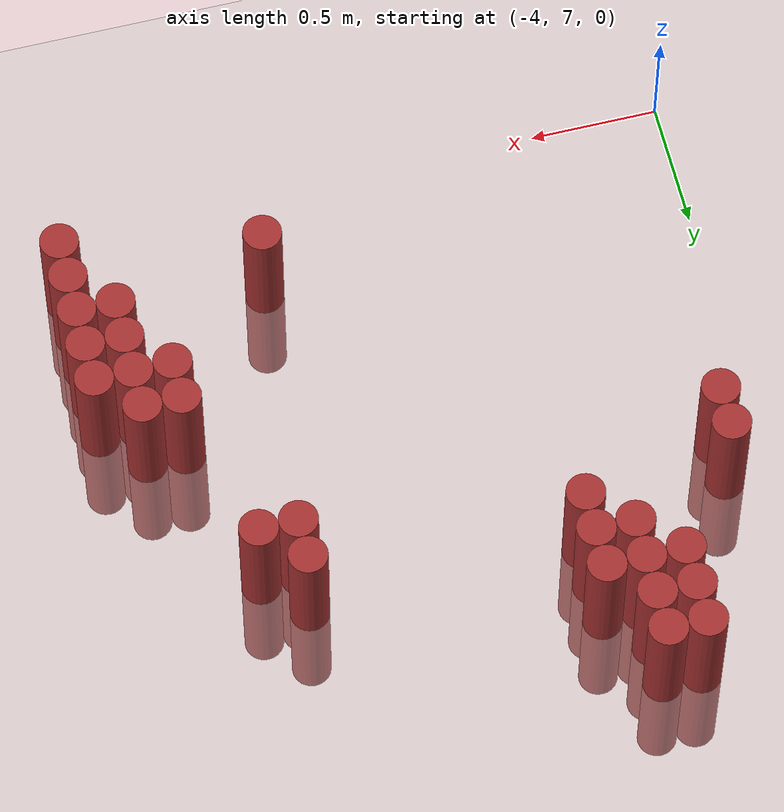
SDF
<sdf version="1.6">
 <world name="default">
  <model name="ground_plane">
   <static>1</static>
   <link name="link">
    <collision name="collision">
     <geometry><plane><normal>0 0 1</normal><size>100 100</size></plane></geometry>
     <surface><friction><ode><mu>100</mu><mu2>50</mu2></ode></friction></surface>
    </collision>
    <visual name="visual">
     <cast_shadows>0</cast_shadows>
     <geometry><plane><normal>0 0 1</normal><size>100 100</size></plane></geometry>
     <material>
      <script><uri>file://media/materials/scripts/gazebo.material</uri><name>Gazebo/Grey</name></script>
     </material>
    </visual>
   </link>
  </model>
  <model name="unit_cylinder_156">
   <static>1</static>
   <pose>-3.825000 8.475000 0.000000 0.000000 0.000000 0.000000</pose>
   <link name="link">
    <inertial>
     <mass>1</mass>
     <inertia><ixx>0.145833</ixx><ixy>0</ixy><ixz>0</ixz><iyy>0.145833</iyy><iyz>0</iyz><izz>0.125</izz></inertia>
    </inertial>
    <collision name="collision">
     <geometry><cylinder><radius>0.075000</radius><length>1</length></cylinder></geometry>
    </collision>
    <visual name="visual">
     <geometry><cylinder><radius>0.075000</radius><length>1</length></cylinder></geometry>
     <material>
      <ambient>0.648000 0.192000 0.192000 1</ambient>
      <diffuse>0.648000 0.192000 0.192000 1</diffuse>
     </material>
     <material>
      <script><name>Gazebo/Grey</name><uri>file://media/materials/scripts/gazebo.material</uri></script>
     </material>
    </visual>
   </link>
  </model>
  <model name="unit_cylinder_157">
   <static>1</static>
   <pose>-3.825000 8.625000 0.000000 0.000000 0.000000 0.000000</pose>
   <link name="link">
    <inertial>
     <mass>1</mass>
     <inertia><ixx>0.145833</ixx><ixy>0</ixy><ixz>0</ixz><iyy>0.145833</iyy><iyz>0</iyz><izz>0.125</izz></inertia>
    </inertial>
    <collision name="collision">
     <geometry><cylinder><radius>0.075000</radius><length>1</length></cylinder></geometry>
    </collision>
    <visual name="visual">
     <geometry><cylinder><radius>0.075000</radius><length>1</length></cylinder></geometry>
     <material>
      <ambient>0.648000 0.192000 0.192000 1</ambient>
      <diffuse>0.648000 0.192000 0.192000 1</diffuse>
     </material>
     <material>
      <script><name>Gazebo/Grey</name><uri>file://media/materials/scripts/gazebo.material</uri></script>
     </material>
    </visual>
   </link>
  </model>
  <model name="unit_cylinder_166">
   <static>1</static>
   <pose>-3.525000 9.075000 0.000000 0.000000 0.000000 0.000000</pose>
   <link name="link">
    <inertial>
     <mass>1</mass>
     <inertia><ixx>0.145833</ixx><ixy>0</ixy><ixz>0</ixz><iyy>0.145833</iyy><iyz>0</iyz><izz>0.125</izz></inertia>
    </inertial>
    <collision name="collision">
     <geometry><cylinder><radius>0.075000</radius><length>1</length></cylinder></geometry>
    </collision>
    <visual name="visual">
     <geometry><cylinder><radius>0.075000</radius><length>1</length></cylinder></geometry>
     <material>
      <ambient>0.648000 0.192000 0.192000 1</ambient>
      <diffuse>0.648000 0.192000 0.192000 1</diffuse>
     </material>
     <material>
      <script><name>Gazebo/Grey</name><uri>file://media/materials/scripts/gazebo.material</uri></script>
     </material>
    </visual>
   </link>
  </model>
  <model name="unit_cylinder_167">
   <static>1</static>
   <pose>-3.525000 9.225000 0.000000 0.000000 0.000000 0.000000</pose>
   <link name="link">
    <inertial>
     <mass>1</mass>
     <inertia><ixx>0.145833</ixx><ixy>0</ixy><ixz>0</ixz><iyy>0.145833</iyy><iyz>0</iyz><izz>0.125</izz></inertia>
    </inertial>
    <collision name="collision">
     <geometry><cylinder><radius>0.075000</radius><length>1</length></cylinder></geometry>
    </collision>
    <visual name="visual">
     <geometry><cylinder><radius>0.075000</radius><length>1</length></cylinder></geometry>
     <material>
      <ambient>0.648000 0.192000 0.192000 1</ambient>
      <diffuse>0.648000 0.192000 0.192000 1</diffuse>
     </material>
     <material>
      <script><name>Gazebo/Grey</name><uri>file://media/materials/scripts/gazebo.material</uri></script>
     </material>
    </visual>
   </link>
  </model>
  <model name="unit_cylinder_168">
   <static>1</static>
   <pose>-3.525000 9.375000 0.000000 0.000000 0.000000 0.000000</pose>
   <link name="link">
    <inertial>
     <mass>1</mass>
     <inertia><ixx>0.145833</ixx><ixy>0</ixy><ixz>0</ixz><iyy>0.145833</iyy><iyz>0</iyz><izz>0.125</izz></inertia>
    </inertial>
    <collision name="collision">
     <geometry><cylinder><radius>0.075000</radius><length>1</length></cylinder></geometry>
    </collision>
    <visual name="visual">
     <geometry><cylinder><radius>0.075000</radius><length>1</length></cylinder></geometry>
     <material>
      <ambient>0.648000 0.192000 0.192000 1</ambient>
      <diffuse>0.648000 0.192000 0.192000 1</diffuse>
     </material>
     <material>
      <script><name>Gazebo/Grey</name><uri>file://media/materials/scripts/gazebo.material</uri></script>
     </material>
    </visual>
   </link>
  </model>
  <model name="unit_cylinder_173">
   <static>1</static>
   <pose>-3.375000 8.925000 0.000000 0.000000 0.000000 0.000000</pose>
   <link name="link">
    <inertial>
     <mass>1</mass>
     <inertia><ixx>0.145833</ixx><ixy>0</ixy><ixz>0</ixz><iyy>0.145833</iyy><iyz>0</iyz><izz>0.125</izz></inertia>
    </inertial>
    <collision name="collision">
     <geometry><cylinder><radius>0.075000</radius><length>1</length></cylinder></geometry>
    </collision>
    <visual name="visual">
     <geometry><cylinder><radius>0.075000</radius><length>1</length></cylinder></geometry>
     <material>
      <ambient>0.648000 0.192000 0.192000 1</ambient>
      <diffuse>0.648000 0.192000 0.192000 1</diffuse>
     </material>
     <material>
      <script><name>Gazebo/Grey</name><uri>file://media/materials/scripts/gazebo.material</uri></script>
     </material>
    </visual>
   </link>
  </model>
  <model name="unit_cylinder_174">
   <static>1</static>
   <pose>-3.375000 9.075000 0.000000 0.000000 0.000000 0.000000</pose>
   <link name="link">
    <inertial>
     <mass>1</mass>
     <inertia><ixx>0.145833</ixx><ixy>0</ixy><ixz>0</ixz><iyy>0.145833</iyy><iyz>0</iyz><izz>0.125</izz></inertia>
    </inertial>
    <collision name="collision">
     <geometry><cylinder><radius>0.075000</radius><length>1</length></cylinder></geometry>
    </collision>
    <visual name="visual">
     <geometry><cylinder><radius>0.075000</radius><length>1</length></cylinder></geometry>
     <material>
      <ambient>0.648000 0.192000 0.192000 1</ambient>
      <diffuse>0.648000 0.192000 0.192000 1</diffuse>
     </material>
     <material>
      <script><name>Gazebo/Grey</name><uri>file://media/materials/scripts/gazebo.material</uri></script>
     </material>
    </visual>
   </link>
  </model>
  <model name="unit_cylinder_175">
   <static>1</static>
   <pose>-3.375000 9.225000 0.000000 0.000000 0.000000 0.000000</pose>
   <link name="link">
    <inertial>
     <mass>1</mass>
     <inertia><ixx>0.145833</ixx><ixy>0</ixy><ixz>0</ixz><iyy>0.145833</iyy><iyz>0</iyz><izz>0.125</izz></inertia>
    </inertial>
    <collision name="collision">
     <geometry><cylinder><radius>0.075000</radius><length>1</length></cylinder></geometry>
    </collision>
    <visual name="visual">
     <geometry><cylinder><radius>0.075000</radius><length>1</length></cylinder></geometry>
     <material>
      <ambient>0.648000 0.192000 0.192000 1</ambient>
      <diffuse>0.648000 0.192000 0.192000 1</diffuse>
     </material>
     <material>
      <script><name>Gazebo/Grey</name><uri>file://media/materials/scripts/gazebo.material</uri></script>
     </material>
    </visual>
   </link>
  </model>
  <model name="unit_cylinder_176">
   <static>1</static>
   <pose>-3.375000 9.375000 0.000000 0.000000 0.000000 0.000000</pose>
   <link name="link">
    <inertial>
     <mass>1</mass>
     <inertia><ixx>0.145833</ixx><ixy>0</ixy><ixz>0</ixz><iyy>0.145833</iyy><iyz>0</iyz><izz>0.125</izz></inertia>
    </inertial>
    <collision name="collision">
     <geometry><cylinder><radius>0.075000</radius><length>1</length></cylinder></geometry>
    </collision>
    <visual name="visual">
     <geometry><cylinder><radius>0.075000</radius><length>1</length></cylinder></geometry>
     <material>
      <ambient>0.648000 0.192000 0.192000 1</ambient>
      <diffuse>0.648000 0.192000 0.192000 1</diffuse>
     </material>
     <material>
      <script><name>Gazebo/Grey</name><uri>file://media/materials/scripts/gazebo.material</uri></script>
     </material>
    </visual>
   </link>
  </model>
  <model name="unit_cylinder_179">
   <static>1</static>
   <pose>-3.225000 8.775000 0.000000 0.000000 0.000000 0.000000</pose>
   <link name="link">
    <inertial>
     <mass>1</mass>
     <inertia><ixx>0.145833</ixx><ixy>0</ixy><ixz>0</ixz><iyy>0.145833</iyy><iyz>0</iyz><izz>0.125</izz></inertia>
    </inertial>
    <collision name="collision">
     <geometry><cylinder><radius>0.075000</radius><length>1</length></cylinder></geometry>
    </collision>
    <visual name="visual">
     <geometry><cylinder><radius>0.075000</radius><length>1</length></cylinder></geometry>
     <material>
      <ambient>0.648000 0.192000 0.192000 1</ambient>
      <diffuse>0.648000 0.192000 0.192000 1</diffuse>
     </material>
     <material>
      <script><name>Gazebo/Grey</name><uri>file://media/materials/scripts/gazebo.material</uri></script>
     </material>
    </visual>
   </link>
  </model>
  <model name="unit_cylinder_180">
   <static>1</static>
   <pose>-3.225000 8.925000 0.000000 0.000000 0.000000 0.000000</pose>
   <link name="link">
    <inertial>
     <mass>1</mass>
     <inertia><ixx>0.145833</ixx><ixy>0</ixy><ixz>0</ixz><iyy>0.145833</iyy><iyz>0</iyz><izz>0.125</izz></inertia>
    </inertial>
    <collision name="collision">
     <geometry><cylinder><radius>0.075000</radius><length>1</length></cylinder></geometry>
    </collision>
    <visual name="visual">
     <geometry><cylinder><radius>0.075000</radius><length>1</length></cylinder></geometry>
     <material>
      <ambient>0.648000 0.192000 0.192000 1</ambient>
      <diffuse>0.648000 0.192000 0.192000 1</diffuse>
     </material>
     <material>
      <script><name>Gazebo/Grey</name><uri>file://media/materials/scripts/gazebo.material</uri></script>
     </material>
    </visual>
   </link>
  </model>
  <model name="unit_cylinder_181">
   <static>1</static>
   <pose>-3.225000 9.075000 0.000000 0.000000 0.000000 0.000000</pose>
   <link name="link">
    <inertial>
     <mass>1</mass>
     <inertia><ixx>0.145833</ixx><ixy>0</ixy><ixz>0</ixz><iyy>0.145833</iyy><iyz>0</iyz><izz>0.125</izz></inertia>
    </inertial>
    <collision name="collision">
     <geometry><cylinder><radius>0.075000</radius><length>1</length></cylinder></geometry>
    </collision>
    <visual name="visual">
     <geometry><cylinder><radius>0.075000</radius><length>1</length></cylinder></geometry>
     <material>
      <ambient>0.648000 0.192000 0.192000 1</ambient>
      <diffuse>0.648000 0.192000 0.192000 1</diffuse>
     </material>
     <material>
      <script><name>Gazebo/Grey</name><uri>file://media/materials/scripts/gazebo.material</uri></script>
     </material>
    </visual>
   </link>
  </model>
  <model name="unit_cylinder_189">
   <static>1</static>
   <pose>-2.325000 7.425000 0.000000 0.000000 0.000000 0.000000</pose>
   <link name="link">
    <inertial>
     <mass>1</mass>
     <inertia><ixx>0.145833</ixx><ixy>0</ixy><ixz>0</ixz><iyy>0.145833</iyy><iyz>0</iyz><izz>0.125</izz></inertia>
    </inertial>
    <collision name="collision">
     <geometry><cylinder><radius>0.075000</radius><length>1</length></cylinder></geometry>
    </collision>
    <visual name="visual">
     <geometry><cylinder><radius>0.075000</radius><length>1</length></cylinder></geometry>
     <material>
      <ambient>0.648000 0.192000 0.192000 1</ambient>
      <diffuse>0.648000 0.192000 0.192000 1</diffuse>
     </material>
     <material>
      <script><name>Gazebo/Grey</name><uri>file://media/materials/scripts/gazebo.material</uri></script>
     </material>
    </visual>
   </link>
  </model>
  <model name="unit_cylinder_192">
   <static>1</static>
   <pose>-2.175000 8.625000 0.000000 0.000000 0.000000 0.000000</pose>
   <link name="link">
    <inertial>
     <mass>1</mass>
     <inertia><ixx>0.145833</ixx><ixy>0</ixy><ixz>0</ixz><iyy>0.145833</iyy><iyz>0</iyz><izz>0.125</izz></inertia>
    </inertial>
    <collision name="collision">
     <geometry><cylinder><radius>0.075000</radius><length>1</length></cylinder></geometry>
    </collision>
    <visual name="visual">
     <geometry><cylinder><radius>0.075000</radius><length>1</length></cylinder></geometry>
     <material>
      <ambient>0.648000 0.192000 0.192000 1</ambient>
      <diffuse>0.648000 0.192000 0.192000 1</diffuse>
     </material>
     <material>
      <script><name>Gazebo/Grey</name><uri>file://media/materials/scripts/gazebo.material</uri></script>
     </material>
    </visual>
   </link>
  </model>
  <model name="unit_cylinder_193">
   <static>1</static>
   <pose>-2.175000 8.775000 0.000000 0.000000 0.000000 0.000000</pose>
   <link name="link">
    <inertial>
     <mass>1</mass>
     <inertia><ixx>0.145833</ixx><ixy>0</ixy><ixz>0</ixz><iyy>0.145833</iyy><iyz>0</iyz><izz>0.125</izz></inertia>
    </inertial>
    <collision name="collision">
     <geometry><cylinder><radius>0.075000</radius><length>1</length></cylinder></geometry>
    </collision>
    <visual name="visual">
     <geometry><cylinder><radius>0.075000</radius><length>1</length></cylinder></geometry>
     <material>
      <ambient>0.648000 0.192000 0.192000 1</ambient>
      <diffuse>0.648000 0.192000 0.192000 1</diffuse>
     </material>
     <material>
      <script><name>Gazebo/Grey</name><uri>file://media/materials/scripts/gazebo.material</uri></script>
     </material>
    </visual>
   </link>
  </model>
  <model name="unit_cylinder_194">
   <static>1</static>
   <pose>-2.025000 8.625000 0.000000 0.000000 0.000000 0.000000</pose>
   <link name="link">
    <inertial>
     <mass>1</mass>
     <inertia><ixx>0.145833</ixx><ixy>0</ixy><ixz>0</ixz><iyy>0.145833</iyy><iyz>0</iyz><izz>0.125</izz></inertia>
    </inertial>
    <collision name="collision">
     <geometry><cylinder><radius>0.075000</radius><length>1</length></cylinder></geometry>
    </collision>
    <visual name="visual">
     <geometry><cylinder><radius>0.075000</radius><length>1</length></cylinder></geometry>
     <material>
      <ambient>0.648000 0.192000 0.192000 1</ambient>
      <diffuse>0.648000 0.192000 0.192000 1</diffuse>
     </material>
     <material>
      <script><name>Gazebo/Grey</name><uri>file://media/materials/scripts/gazebo.material</uri></script>
     </material>
    </visual>
   </link>
  </model>
  <model name="unit_cylinder_195">
   <static>1</static>
   <pose>-1.875000 7.875000 0.000000 0.000000 0.000000 0.000000</pose>
   <link name="link">
    <inertial>
     <mass>1</mass>
     <inertia><ixx>0.145833</ixx><ixy>0</ixy><ixz>0</ixz><iyy>0.145833</iyy><iyz>0</iyz><izz>0.125</izz></inertia>
    </inertial>
    <collision name="collision">
     <geometry><cylinder><radius>0.075000</radius><length>1</length></cylinder></geometry>
    </collision>
    <visual name="visual">
     <geometry><cylinder><radius>0.075000</radius><length>1</length></cylinder></geometry>
     <material>
      <ambient>0.648000 0.192000 0.192000 1</ambient>
      <diffuse>0.648000 0.192000 0.192000 1</diffuse>
     </material>
     <material>
      <script><name>Gazebo/Grey</name><uri>file://media/materials/scripts/gazebo.material</uri></script>
     </material>
    </visual>
   </link>
  </model>
  <model name="unit_cylinder_196">
   <static>1</static>
   <pose>-1.875000 8.025000 0.000000 0.000000 0.000000 0.000000</pose>
   <link name="link">
    <inertial>
     <mass>1</mass>
     <inertia><ixx>0.145833</ixx><ixy>0</ixy><ixz>0</ixz><iyy>0.145833</iyy><iyz>0</iyz><izz>0.125</izz></inertia>
    </inertial>
    <collision name="collision">
     <geometry><cylinder><radius>0.075000</radius><length>1</length></cylinder></geometry>
    </collision>
    <visual name="visual">
     <geometry><cylinder><radius>0.075000</radius><length>1</length></cylinder></geometry>
     <material>
      <ambient>0.648000 0.192000 0.192000 1</ambient>
      <diffuse>0.648000 0.192000 0.192000 1</diffuse>
     </material>
     <material>
      <script><name>Gazebo/Grey</name><uri>file://media/materials/scripts/gazebo.material</uri></script>
     </material>
    </visual>
   </link>
  </model>
  <model name="unit_cylinder_197">
   <static>1</static>
   <pose>-1.725000 7.575000 0.000000 0.000000 0.000000 0.000000</pose>
   <link name="link">
    <inertial>
     <mass>1</mass>
     <inertia><ixx>0.145833</ixx><ixy>0</ixy><ixz>0</ixz><iyy>0.145833</iyy><iyz>0</iyz><izz>0.125</izz></inertia>
    </inertial>
    <collision name="collision">
     <geometry><cylinder><radius>0.075000</radius><length>1</length></cylinder></geometry>
    </collision>
    <visual name="visual">
     <geometry><cylinder><radius>0.075000</radius><length>1</length></cylinder></geometry>
     <material>
      <ambient>0.648000 0.192000 0.192000 1</ambient>
      <diffuse>0.648000 0.192000 0.192000 1</diffuse>
     </material>
     <material>
      <script><name>Gazebo/Grey</name><uri>file://media/materials/scripts/gazebo.material</uri></script>
     </material>
    </visual>
   </link>
  </model>
  <model name="unit_cylinder_198">
   <static>1</static>
   <pose>-1.725000 7.725000 0.000000 0.000000 0.000000 0.000000</pose>
   <link name="link">
    <inertial>
     <mass>1</mass>
     <inertia><ixx>0.145833</ixx><ixy>0</ixy><ixz>0</ixz><iyy>0.145833</iyy><iyz>0</iyz><izz>0.125</izz></inertia>
    </inertial>
    <collision name="collision">
     <geometry><cylinder><radius>0.075000</radius><length>1</length></cylinder></geometry>
    </collision>
    <visual name="visual">
     <geometry><cylinder><radius>0.075000</radius><length>1</length></cylinder></geometry>
     <material>
      <ambient>0.648000 0.192000 0.192000 1</ambient>
      <diffuse>0.648000 0.192000 0.192000 1</diffuse>
     </material>
     <material>
      <script><name>Gazebo/Grey</name><uri>file://media/materials/scripts/gazebo.material</uri></script>
     </material>
    </visual>
   </link>
  </model>
  <model name="unit_cylinder_199">
   <static>1</static>
   <pose>-1.725000 7.875000 0.000000 0.000000 0.000000 0.000000</pose>
   <link name="link">
    <inertial>
     <mass>1</mass>
     <inertia><ixx>0.145833</ixx><ixy>0</ixy><ixz>0</ixz><iyy>0.145833</iyy><iyz>0</iyz><izz>0.125</izz></inertia>
    </inertial>
    <collision name="collision">
     <geometry><cylinder><radius>0.075000</radius><length>1</length></cylinder></geometry>
    </collision>
    <visual name="visual">
     <geometry><cylinder><radius>0.075000</radius><length>1</length></cylinder></geometry>
     <material>
      <ambient>0.648000 0.192000 0.192000 1</ambient>
      <diffuse>0.648000 0.192000 0.192000 1</diffuse>
     </material>
     <material>
      <script><name>Gazebo/Grey</name><uri>file://media/materials/scripts/gazebo.material</uri></script>
     </material>
    </visual>
   </link>
  </model>
  <model name="unit_cylinder_200">
   <static>1</static>
   <pose>-1.725000 8.025000 0.000000 0.000000 0.000000 0.000000</pose>
   <link name="link">
    <inertial>
     <mass>1</mass>
     <inertia><ixx>0.145833</ixx><ixy>0</ixy><ixz>0</ixz><iyy>0.145833</iyy><iyz>0</iyz><izz>0.125</izz></inertia>
    </inertial>
    <collision name="collision">
     <geometry><cylinder><radius>0.075000</radius><length>1</length></cylinder></geometry>
    </collision>
    <visual name="visual">
     <geometry><cylinder><radius>0.075000</radius><length>1</length></cylinder></geometry>
     <material>
      <ambient>0.648000 0.192000 0.192000 1</ambient>
      <diffuse>0.648000 0.192000 0.192000 1</diffuse>
     </material>
     <material>
      <script><name>Gazebo/Grey</name><uri>file://media/materials/scripts/gazebo.material</uri></script>
     </material>
    </visual>
   </link>
  </model>
  <model name="unit_cylinder_201">
   <static>1</static>
   <pose>-1.575000 7.275000 0.000000 0.000000 0.000000 0.000000</pose>
   <link name="link">
    <inertial>
     <mass>1</mass>
     <inertia><ixx>0.145833</ixx><ixy>0</ixy><ixz>0</ixz><iyy>0.145833</iyy><iyz>0</iyz><izz>0.125</izz></inertia>
    </inertial>
    <collision name="collision">
     <geometry><cylinder><radius>0.075000</radius><length>1</length></cylinder></geometry>
    </collision>
    <visual name="visual">
     <geometry><cylinder><radius>0.075000</radius><length>1</length></cylinder></geometry>
     <material>
      <ambient>0.648000 0.192000 0.192000 1</ambient>
      <diffuse>0.648000 0.192000 0.192000 1</diffuse>
     </material>
     <material>
      <script><name>Gazebo/Grey</name><uri>file://media/materials/scripts/gazebo.material</uri></script>
     </material>
    </visual>
   </link>
  </model>
  <model name="unit_cylinder_202">
   <static>1</static>
   <pose>-1.575000 7.425000 0.000000 0.000000 0.000000 0.000000</pose>
   <link name="link">
    <inertial>
     <mass>1</mass>
     <inertia><ixx>0.145833</ixx><ixy>0</ixy><ixz>0</ixz><iyy>0.145833</iyy><iyz>0</iyz><izz>0.125</izz></inertia>
    </inertial>
    <collision name="collision">
     <geometry><cylinder><radius>0.075000</radius><length>1</length></cylinder></geometry>
    </collision>
    <visual name="visual">
     <geometry><cylinder><radius>0.075000</radius><length>1</length></cylinder></geometry>
     <material>
      <ambient>0.648000 0.192000 0.192000 1</ambient>
      <diffuse>0.648000 0.192000 0.192000 1</diffuse>
     </material>
     <material>
      <script><name>Gazebo/Grey</name><uri>file://media/materials/scripts/gazebo.material</uri></script>
     </material>
    </visual>
   </link>
  </model>
  <model name="unit_cylinder_203">
   <static>1</static>
   <pose>-1.575000 7.575000 0.000000 0.000000 0.000000 0.000000</pose>
   <link name="link">
    <inertial>
     <mass>1</mass>
     <inertia><ixx>0.145833</ixx><ixy>0</ixy><ixz>0</ixz><iyy>0.145833</iyy><iyz>0</iyz><izz>0.125</izz></inertia>
    </inertial>
    <collision name="collision">
     <geometry><cylinder><radius>0.075000</radius><length>1</length></cylinder></geometry>
    </collision>
    <visual name="visual">
     <geometry><cylinder><radius>0.075000</radius><length>1</length></cylinder></geometry>
     <material>
      <ambient>0.648000 0.192000 0.192000 1</ambient>
      <diffuse>0.648000 0.192000 0.192000 1</diffuse>
     </material>
     <material>
      <script><name>Gazebo/Grey</name><uri>file://media/materials/scripts/gazebo.material</uri></script>
     </material>
    </visual>
   </link>
  </model>
  <model name="unit_cylinder_204">
   <static>1</static>
   <pose>-1.575000 7.725000 0.000000 0.000000 0.000000 0.000000</pose>
   <link name="link">
    <inertial>
     <mass>1</mass>
     <inertia><ixx>0.145833</ixx><ixy>0</ixy><ixz>0</ixz><iyy>0.145833</iyy><iyz>0</iyz><izz>0.125</izz></inertia>
    </inertial>
    <collision name="collision">
     <geometry><cylinder><radius>0.075000</radius><length>1</length></cylinder></geometry>
    </collision>
    <visual name="visual">
     <geometry><cylinder><radius>0.075000</radius><length>1</length></cylinder></geometry>
     <material>
      <ambient>0.648000 0.192000 0.192000 1</ambient>
      <diffuse>0.648000 0.192000 0.192000 1</diffuse>
     </material>
     <material>
      <script><name>Gazebo/Grey</name><uri>file://media/materials/scripts/gazebo.material</uri></script>
     </material>
    </visual>
   </link>
  </model>
  <model name="unit_cylinder_205">
   <static>1</static>
   <pose>-1.575000 7.875000 0.000000 0.000000 0.000000 0.000000</pose>
   <link name="link">
    <inertial>
     <mass>1</mass>
     <inertia><ixx>0.145833</ixx><ixy>0</ixy><ixz>0</ixz><iyy>0.145833</iyy><iyz>0</iyz><izz>0.125</izz></inertia>
    </inertial>
    <collision name="collision">
     <geometry><cylinder><radius>0.075000</radius><length>1</length></cylinder></geometry>
    </collision>
    <visual name="visual">
     <geometry><cylinder><radius>0.075000</radius><length>1</length></cylinder></geometry>
     <material>
      <ambient>0.648000 0.192000 0.192000 1</ambient>
      <diffuse>0.648000 0.192000 0.192000 1</diffuse>
     </material>
     <material>
      <script><name>Gazebo/Grey</name><uri>file://media/materials/scripts/gazebo.material</uri></script>
     </material>
    </visual>
   </link>
  </model>
 </world>
</sdf>
